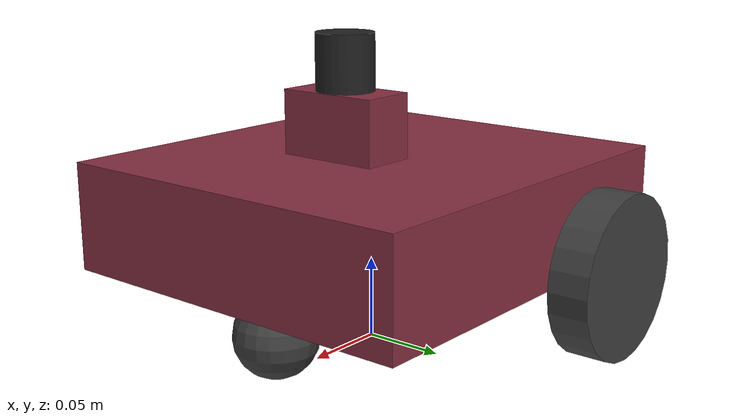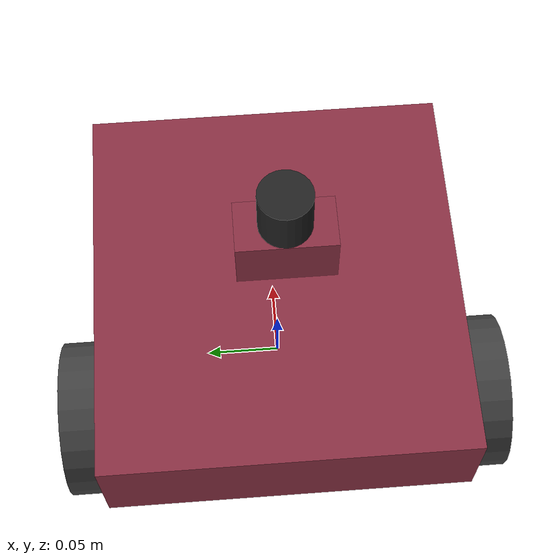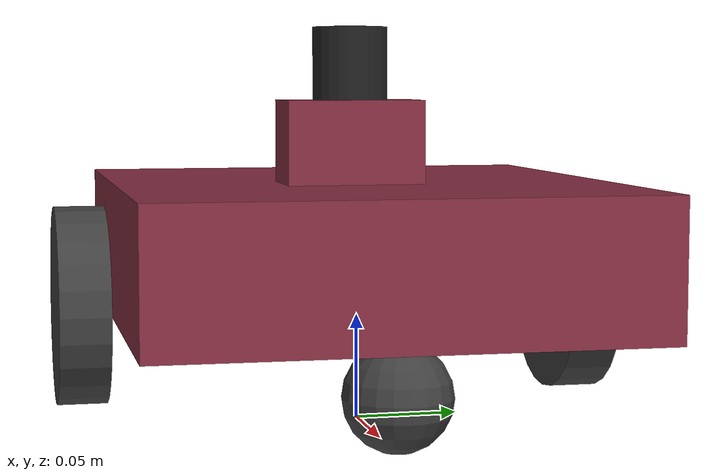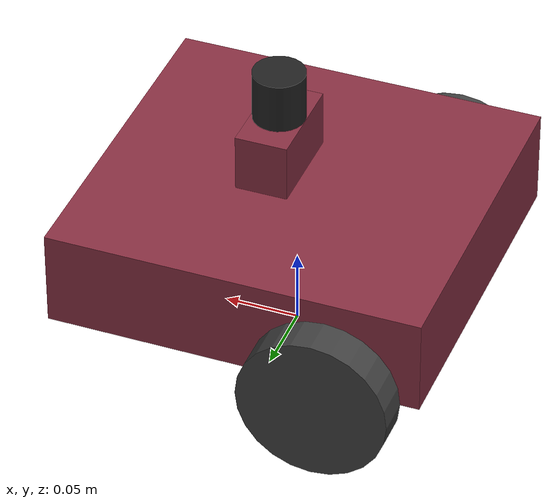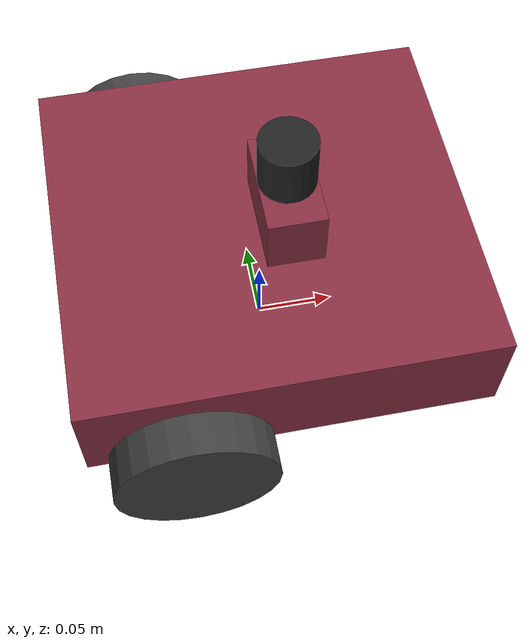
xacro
<?xml version = "1.0"?>

<robot name="my_robot" xmlns:xacro="http://www.ros.org/wiki/xacro">
<xacro:include filename="$(find my_robot_description)/urdf/common_properties.xacro" />
<xacro:include filename="$(find my_robot_description)/urdf/mobile_base.xacro" />
<xacro:include filename="$(find my_robot_description)/urdf/lidar.xacro" />
<xacro:include filename="$(find my_robot_description)/urdf/mobile_base_gz.xacro"/>
<xacro:include filename="$(find my_robot_description)/urdf/mobile_base.ros2_control.xacro"/>
</robot>

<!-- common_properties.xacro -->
<robot xmlns:xacro="http://www.ros.org/wiki/xacro">

    <material name="green">
        <color rgba="0 0.6 0 1" />
    </material>

    <material name="mycolor">
        <color rgba="0.529 0.184 0.259 1" />
    </material>

    <material name="gray">
        <color rgba="0.25 0.25 0.25 1" />
    </material>

    <material name="mycolor2">
        <color rgba="0.173 0.161 0.522 1" />
    </material>

    <xacro:macro name="box_inertia" params="m x y z o_xyz o_rpy">
        <inertial>
            <mass value="${m}" />
            <origin xyz="${o_xyz}" rpy="${o_rpy}" />
            <inertia ixx="${(m/12) * (z*z + y*y)}" ixy="0" ixz="0"
                    iyy="${(m/12) * (x*x + z*z)}" iyz="0"
                    izz="${(m/12) * (x*x + y*y)}" />
        </inertial>
    </xacro:macro>

    <xacro:macro name="cylinder_inertia" params="m r l o_xyz o_rpy">
        <inertial>
            <mass value="${m}" />
            <origin xyz="${o_xyz}" rpy="${o_rpy}" />
            <inertia ixx="${(m/12) * (3*r*r + l*l)}" ixy="0" ixz="0"
                    iyy="${(m/12) * (3*r*r + l*l)}" iyz="0"
                    izz="${(m/2) * (r*r)}" />
        </inertial>
    </xacro:macro>

    <xacro:macro name="sphere_inertia" params="m r o_xyz o_rpy">
        <inertial>
            <mass value="${m}" />
            <origin xyz="${o_xyz}" rpy="${o_rpy}" />
            <inertia ixx="${(2/5) * m * r * r}" ixy="0" ixz="0"
                    iyy="${(2/5) * m * r * r}" iyz="0"
                    izz="${(2/5) * m * r * r}" />
        </inertial>
    </xacro:macro>

</robot>

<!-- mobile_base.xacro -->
<robot xmlns:xacro="http://www.ros.org/wiki/xacro">

    <xacro:property name="base_length" value="0.25" />
    <xacro:property name="base_width" value="0.233" />
    <xacro:property name="base_height" value="0.065" />
    <xacro:property name="wheel_radius" value="0.05" />
    <xacro:property name="wheel_length" value="0.025" />

    <link name="base_footprint" />

    <link name="base_link">
        <visual>
            <geometry>
                <box size="${base_length} ${base_width} ${base_height}" />
            </geometry>
            <origin xyz="0 0 ${base_height / 2.0}" rpy="0 0 0" />
            <material name="mycolor" />
        </visual>
        <collision>
            <geometry>
                <box size="${base_length} ${base_width} ${base_height}" />
            </geometry>
            <origin xyz="0 0 ${base_height / 2.0}" rpy="0 0 0" />
        </collision>
        <xacro:box_inertia m="3.0" x="${base_length}" y="${base_width}" z="${base_height}"
                           o_xyz="0 0 ${base_height / 2.0}" o_rpy="0 0 0" />
    </link>

    <xacro:macro name="wheel_link" params="prefix">
        <link name="${prefix}_wheel_link">
            <visual>
                <geometry>
                    <cylinder radius="${wheel_radius}" length="${wheel_length}" />
                </geometry>
                <origin xyz="0 0 0" rpy="${pi / 2.0} 0 0" />
                <material name="gray" />
            </visual>
            <collision>
                <geometry>
                    <sphere radius="${wheel_radius}" />
                </geometry>
                <origin xyz="0 0 0" rpy="0 0 0" />
            </collision>
            <xacro:cylinder_inertia m="0.2" r="${wheel_radius}" l="${wheel_length}"
                                    o_xyz="0 0 0" o_rpy="${pi / 2.0} 0 0" />
        </link>
    </xacro:macro>
    <xacro:wheel_link prefix="right" />
    <xacro:wheel_link prefix="left" />

    <link name="caster_wheel_link">
        <visual>
            <geometry>
                <sphere radius="${wheel_radius / 2.0}" />
            </geometry>
            <origin xyz="0 0 0" rpy="0 0 0" />
            <material name="gray" />
        </visual>
        <collision>
            <geometry>
                <sphere radius="${wheel_radius / 2.0}" />
            </geometry>
            <origin xyz="0 0 0" rpy="0 0 0" />
        </collision>
        <xacro:sphere_inertia m="0.3" r="${wheel_radius / 2.0}"
                              o_xyz="0 0 0" o_rpy="0 0 0" />
    </link>

    <joint name="base_joint" type="fixed">
        <parent link="base_footprint" />
        <child link="base_link" />
        <origin xyz="0 0 ${wheel_radius}" rpy="0 0 0"/>
    </joint>

    <joint name="base_caster_wheel_joint" type="fixed">
        <parent link="base_link" />
        <child link="caster_wheel_link" />
        <origin xyz="${base_length / 3.0} 0 ${-wheel_radius / 2.0}" rpy="0 0 0"/>
    </joint>

    <joint name="base_right_wheel_joint" type="continuous">
        <parent link="base_link"/>
        <child link="right_wheel_link"/>
        <origin xyz="${-base_length / 4.0} ${-(base_width + wheel_length) / 2.0} 0" rpy="0 0 0"/>
        <axis xyz="0 1 0"/>
    </joint>

    <joint name="base_left_wheel_joint" type="continuous">
        <parent link="base_link"/>
        <child link="left_wheel_link"/>
        <origin xyz="${-base_length / 4.0} ${(base_width + wheel_length) / 2.0} 0" rpy="0 0 0"/>
        <axis xyz="0 1 0"/>
    </joint>
</robot>

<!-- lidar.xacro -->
<robot xmlns:xacro="http://www.ros.org/wiki/xacro" >

   <link name="laser_frame"/>

   <link name="mount_link">
      <visual>
         <geometry>
               <box size="0.035 0.0646 0.039" />
         </geometry>
         <origin xyz="0 0 0" rpy="0 0 0" />
         <material name="mycolor" />
      </visual>
      <collision>
         <geometry>
               <box size="0.035 0.0646 0.039" />
         </geometry>
         <origin xyz="0 0 0" rpy="0 0 0" />
      </collision>
      <xacro:box_inertia m="0.05" x="0.035" y="0.0646" z="0.039" o_xyz= "0 0 0.0195" o_rpy = "0 0 0"/>
      </link>

   <joint name="mount_joint" type="fixed">
      <parent link="base_link"/>
      <child link="mount_link"/>
      <origin xyz="0.015 -0.0067 ${base_height+0.0195}" rpy= "0 0 0"/>
   </joint>

   <link name="laser_link">
      <visual>
         <origin xyz="0 0 0"/>
         <geometry>
            <cylinder length="0.034" radius="${0.035/2}"/>
         </geometry>
         <material name="laser_material">
            <color rgba="0.13 0.13 0.13 1.0"/>
         </material>
      </visual>
      <collision>
         <origin xyz="0 0 0"/>
         <geometry>
            <cylinder length="0.034" radius="${0.035/2}"/>
         </geometry>
      </collision>
      <xacro:cylinder_inertia m="0.15" r="${0.035/2}" l="0.034" o_xyz= "0 0 0" o_rpy= "0 0 0"/>
   </link>

    <joint name="laser_joint" type="fixed">
     <parent link="mount_link"/>
     <child link="laser_link"/>
     <origin xyz="0 0 ${0.039/2 + 0.034/2}" rpy="0 0 0"/>
   </joint>

   <joint name="laser_frame_joint" type="fixed">
      <parent link="laser_link"/>
      <child link="laser_frame"/>
      <origin xyz="0 0 ${0.026-0.034/2}" rpy="0 0 ${3.14159265/2}"/>
   </joint>

   <gazebo reference = "laser_frame">
      <sensor name="imu_sensor" type="imu">
      <always_on>1</always_on>
      <update_rate>1</update_rate>
      <visualize>true</visualize>
      <topic>imu</topic>
   </sensor>

   </gazebo>
</robot>
